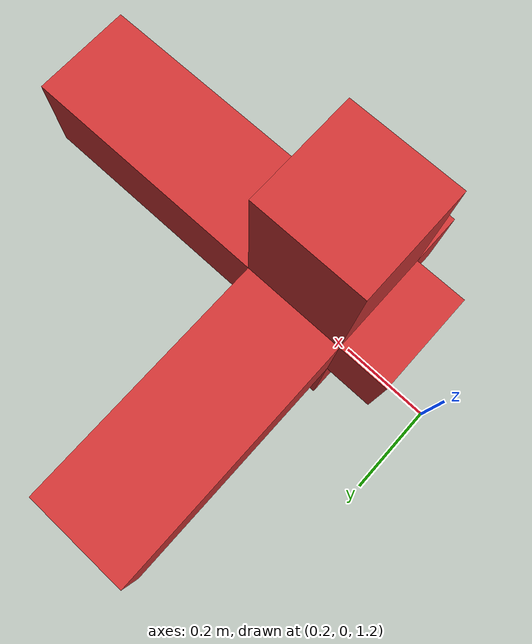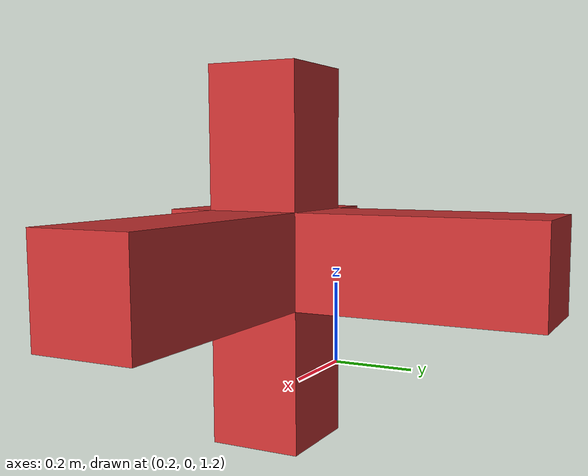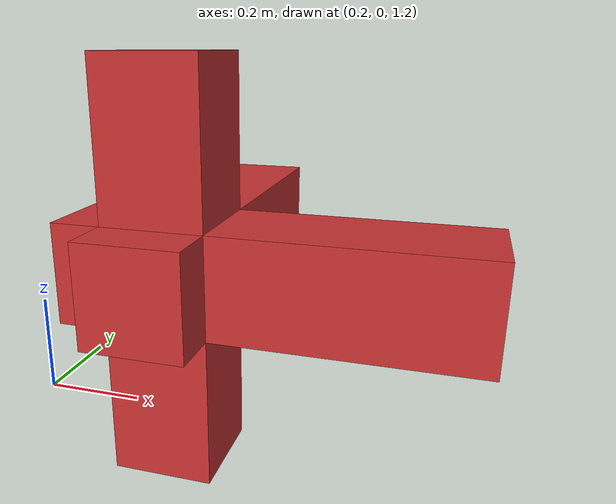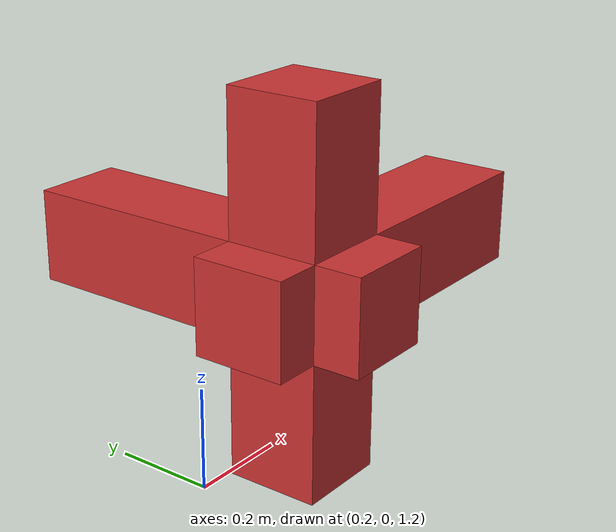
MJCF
<mujoco>
  <option gravity="0 0 -9.81"/>
  <worldbody>
    <body name="suspension_point_1" pos="0 0 2"/>
    <body name="suspension_point_2" pos="1 0 2"/>
    <body name="l_shaped_object" pos="0.5 0 1.5">
      <geom type="box" size="0.1 0.4 0.1" pos="0 0.2 0" density="1" rgba="0.8 0.2 0.2 1"/>
      <geom type="box" size="0.4 0.1 0.1" pos="0.2 0 0" density="1" rgba="0.8 0.2 0.2 1"/>
      <joint type="ball" name="swing" limited="false"/>
      <geom type="box" size="0.1 0.4 0.1" pos="0 0 0" density="1" rgba="0.8 0.2 0.2 1" quat="0 0 0.707 0.707"/>
    </body>
  </worldbody>
</mujoco>
